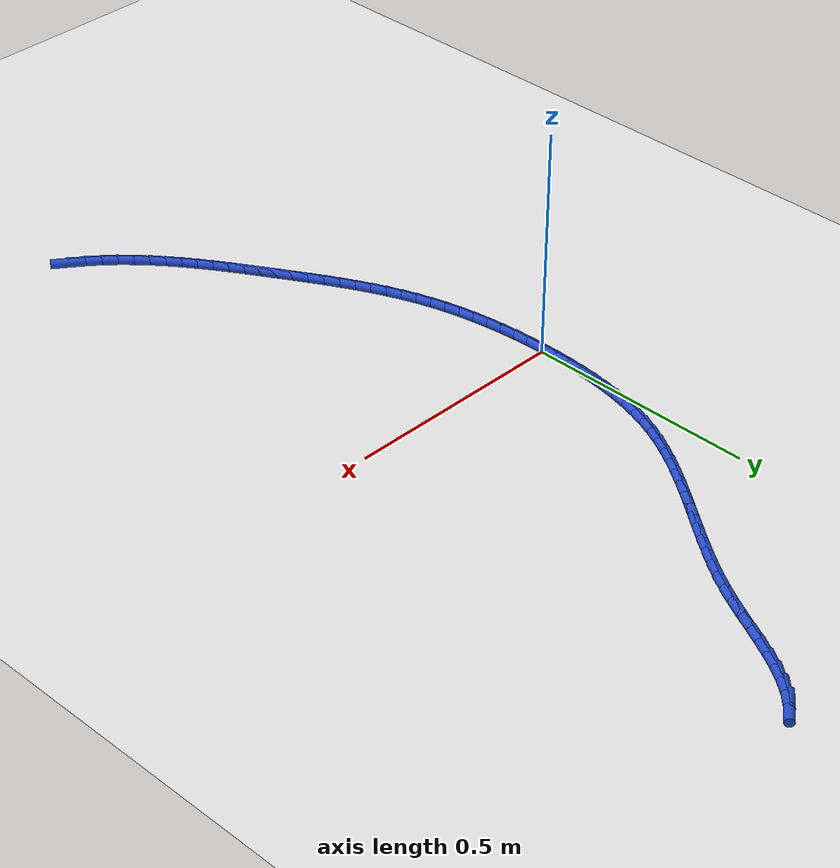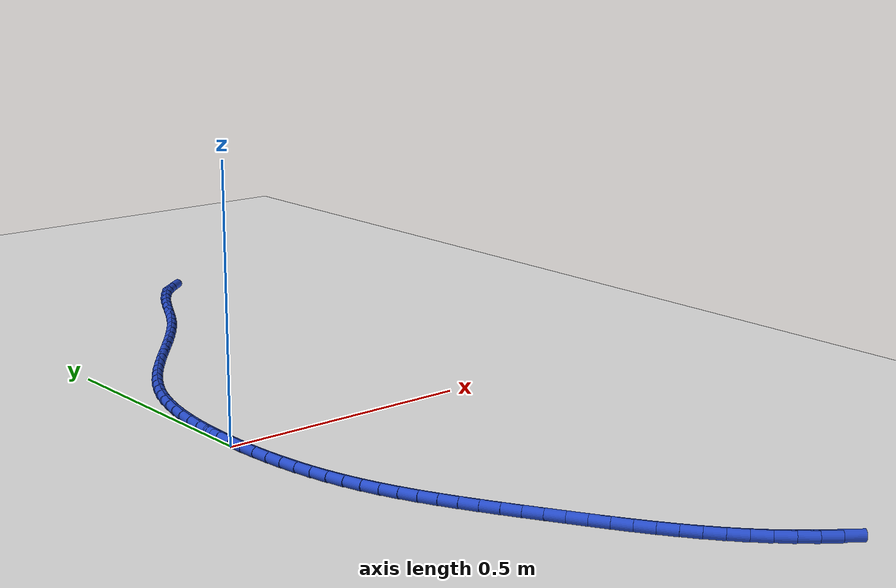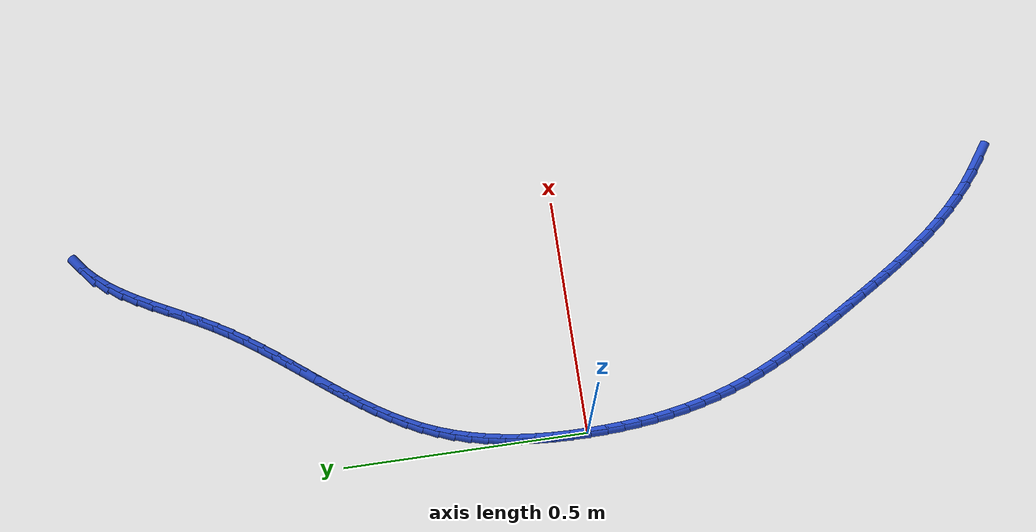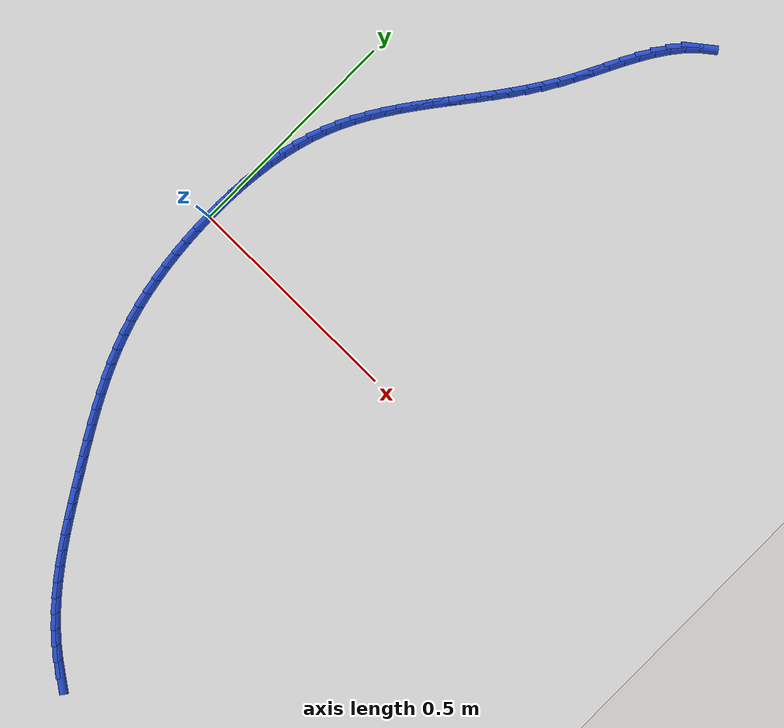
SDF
<sdf version="1.6">
 <world name="default">
  <model name="ground_plane">
   <static>1</static>
   <link name="link">
    <collision name="collision">
     <geometry><plane><normal>0 0 1</normal><size>100 100</size></plane></geometry>
     <surface><friction><ode><mu>100</mu><mu2>50</mu2></ode></friction></surface>
    </collision>
    <visual name="visual">
     <cast_shadows>0</cast_shadows>
     <geometry><plane><normal>0 0 1</normal><size>100 100</size></plane></geometry>
     <material>
      <script><uri>file://media/materials/scripts/gazebo.material</uri><name>Gazebo/WhiteGlow</name></script>
     </material>
    </visual>
   </link>
  </model>
  <model name="line">
   <link name="link_0">
    <pose>-1.734723475976807e-18 -5.551115123125783e-17 0.01 0 1.57 1.5666256355429615</pose>
    <collision name="collision">
     <geometry><cylinder><radius>0.01</radius><length>0.08</length></cylinder></geometry>
    </collision>
    <visual name="visual">
     <material>
      <script><name>Gazebo/Blue</name><uri>file://media/materials/scripts/gazebo.material</uri></script>
     </material>
     <geometry><cylinder><radius>0.01</radius><length>0.08</length></cylinder></geometry>
    </visual>
   </link>
   <link name="link_1">
    <pose>0.00014543730092362914 0.03487106785414455 0.01 0 1.57 1.5371304723873072</pose>
    <collision name="collision">
     <geometry><cylinder><radius>0.01</radius><length>0.08</length></cylinder></geometry>
    </collision>
    <visual name="visual">
     <material>
      <script><name>Gazebo/Blue</name><uri>file://media/materials/scripts/gazebo.material</uri></script>
     </material>
     <geometry><cylinder><radius>0.01</radius><length>0.08</length></cylinder></geometry>
    </visual>
   </link>
   <link name="link_2">
    <pose>0.0013197954793962151 0.06974065596037805 0.01 0 1.57 1.5045757995213618</pose>
    <collision name="collision">
     <geometry><cylinder><radius>0.01</radius><length>0.08</length></cylinder></geometry>
    </collision>
    <visual name="visual">
     <material>
      <script><name>Gazebo/Blue</name><uri>file://media/materials/scripts/gazebo.material</uri></script>
     </material>
     <geometry><cylinder><radius>0.01</radius><length>0.08</length></cylinder></geometry>
    </visual>
   </link>
   <link name="link_3">
    <pose>0.003624216525647472 0.10448896949501515 0.01 0 1.57 1.468692236618032</pose>
    <collision name="collision">
     <geometry><cylinder><radius>0.01</radius><length>0.08</length></cylinder></geometry>
    </collision>
    <visual name="visual">
     <material>
      <script><name>Gazebo/Blue</name><uri>file://media/materials/scripts/gazebo.material</uri></script>
     </material>
     <geometry><cylinder><radius>0.01</radius><length>0.08</length></cylinder></geometry>
    </visual>
   </link>
   <link name="link_4">
    <pose>0.007159842429907117 0.13899621363437048 0.01 0 1.57 1.4291886234938014</pose>
    <collision name="collision">
     <geometry><cylinder><radius>0.01</radius><length>0.08</length></cylinder></geometry>
    </collision>
    <visual name="visual">
     <material>
      <script><name>Gazebo/Blue</name><uri>file://media/materials/scripts/gazebo.material</uri></script>
     </material>
     <geometry><cylinder><radius>0.01</radius><length>0.08</length></cylinder></geometry>
    </visual>
   </link>
   <link name="link_5">
    <pose>0.012027815182404878 0.17314259355475886 0.01 0 1.57 1.3857600534692314</pose>
    <collision name="collision">
     <geometry><cylinder><radius>0.01</radius><length>0.08</length></cylinder></geometry>
    </collision>
    <visual name="visual">
     <material>
      <script><name>Gazebo/Blue</name><uri>file://media/materials/scripts/gazebo.material</uri></script>
     </material>
     <geometry><cylinder><radius>0.01</radius><length>0.08</length></cylinder></geometry>
    </visual>
   </link>
   <link name="link_6">
    <pose>0.01832927677337047 0.20680831443249503 0.01 0 1.57 1.338100644859804</pose>
    <collision name="collision">
     <geometry><cylinder><radius>0.01</radius><length>0.08</length></cylinder></geometry>
    </collision>
    <visual name="visual">
     <material>
      <script><name>Gazebo/Blue</name><uri>file://media/materials/scripts/gazebo.material</uri></script>
     </material>
     <geometry><cylinder><radius>0.01</radius><length>0.08</length></cylinder></geometry>
    </visual>
   </link>
   <link name="link_7">
    <pose>0.026165369193033618 0.23987358144389362 0.01 0 1.57 1.285922636598984</pose>
    <collision name="collision">
     <geometry><cylinder><radius>0.01</radius><length>0.08</length></cylinder></geometry>
    </collision>
    <visual name="visual">
     <material>
      <script><name>Gazebo/Blue</name><uri>file://media/materials/scripts/gazebo.material</uri></script>
     </material>
     <geometry><cylinder><radius>0.01</radius><length>0.08</length></cylinder></geometry>
    </visual>
   </link>
   <link name="link_8">
    <pose>0.03563723443162402 0.2722185997652692 0.01 0 1.57 1.228983282916114</pose>
    <collision name="collision">
     <geometry><cylinder><radius>0.01</radius><length>0.08</length></cylinder></geometry>
    </collision>
    <visual name="visual">
     <material>
      <script><name>Gazebo/Blue</name><uri>file://media/materials/scripts/gazebo.material</uri></script>
     </material>
     <geometry><cylinder><radius>0.01</radius><length>0.08</length></cylinder></geometry>
    </visual>
   </link>
   <link name="link_9">
    <pose>0.04684601447937141 0.30372357457293675 0.01 0 1.57 1.1681911186738887</pose>
    <collision name="collision">
     <geometry><cylinder><radius>0.01</radius><length>0.08</length></cylinder></geometry>
    </collision>
    <visual name="visual">
     <material>
      <script><name>Gazebo/Blue</name><uri>file://media/materials/scripts/gazebo.material</uri></script>
     </material>
     <geometry><cylinder><radius>0.01</radius><length>0.08</length></cylinder></geometry>
    </visual>
   </link>
   <link name="link_10">
    <pose>0.05986431212017489 0.3342924657974614 0.01 0 1.57 1.1109357862142923</pose>
    <collision name="collision">
     <geometry><cylinder><radius>0.01</radius><length>0.08</length></cylinder></geometry>
    </collision>
    <visual name="visual">
     <material>
      <script><name>Gazebo/Blue</name><uri>file://media/materials/scripts/gazebo.material</uri></script>
     </material>
     <geometry><cylinder><radius>0.01</radius><length>0.08</length></cylinder></geometry>
    </visual>
   </link>
   <link name="link_11">
    <pose>0.07457241726912145 0.363989305968658 0.01 0 1.57 1.0607280065086602</pose>
    <collision name="collision">
     <geometry><cylinder><radius>0.01</radius><length>0.08</length></cylinder></geometry>
    </collision>
    <visual name="visual">
     <material>
      <script><name>Gazebo/Blue</name><uri>file://media/materials/scripts/gazebo.material</uri></script>
     </material>
     <geometry><cylinder><radius>0.01</radius><length>0.08</length></cylinder></geometry>
    </visual>
   </link>
   <link name="link_12">
    <pose>0.09077120367790922 0.3929442300658264 0.01 0 1.57 1.0179131908263694</pose>
    <collision name="collision">
     <geometry><cylinder><radius>0.01</radius><length>0.08</length></cylinder></geometry>
    </collision>
    <visual name="visual">
     <material>
      <script><name>Gazebo/Blue</name><uri>file://media/materials/scripts/gazebo.material</uri></script>
     </material>
     <geometry><cylinder><radius>0.01</radius><length>0.08</length></cylinder></geometry>
    </visual>
   </link>
   <link name="link_13">
    <pose>0.10826129481855573 0.42128758138983874 0.01 0 1.57 0.9826130668759274</pose>
    <collision name="collision">
     <geometry><cylinder><radius>0.01</radius><length>0.08</length></cylinder></geometry>
    </collision>
    <visual name="visual">
     <material>
      <script><name>Gazebo/Blue</name><uri>file://media/materials/scripts/gazebo.material</uri></script>
     </material>
     <geometry><cylinder><radius>0.01</radius><length>0.08</length></cylinder></geometry>
    </visual>
   </link>
   <link name="link_14">
    <pose>0.1268433141630784 0.44914970324156606 0.01 0 1.57 0.9548033243427864</pose>
    <collision name="collision">
     <geometry><cylinder><radius>0.01</radius><length>0.08</length></cylinder></geometry>
    </collision>
    <visual name="visual">
     <material>
      <script><name>Gazebo/Blue</name><uri>file://media/materials/scripts/gazebo.material</uri></script>
     </material>
     <geometry><cylinder><radius>0.01</radius><length>0.08</length></cylinder></geometry>
    </visual>
   </link>
   <link name="link_15">
    <pose>0.14631788518349464 0.47666093892188033 0.01 0 1.57 0.9343742652092333</pose>
    <collision name="collision">
     <geometry><cylinder><radius>0.01</radius><length>0.08</length></cylinder></geometry>
    </collision>
    <visual name="visual">
     <material>
      <script><name>Gazebo/Blue</name><uri>file://media/materials/scripts/gazebo.material</uri></script>
     </material>
     <geometry><cylinder><radius>0.01</radius><length>0.08</length></cylinder></geometry>
    </visual>
   </link>
   <link name="link_16">
    <pose>0.16648563135182204 0.5039516317316529 0.01 0 1.57 0.9211783074349869</pose>
    <collision name="collision">
     <geometry><cylinder><radius>0.01</radius><length>0.08</length></cylinder></geometry>
    </collision>
    <visual name="visual">
     <material>
      <script><name>Gazebo/Blue</name><uri>file://media/materials/scripts/gazebo.material</uri></script>
     </material>
     <geometry><cylinder><radius>0.01</radius><length>0.08</length></cylinder></geometry>
    </visual>
   </link>
   <link name="link_17">
    <pose>0.18714717614007798 0.5311521249717553 0.01 0 1.57 0.9150630915720176</pose>
    <collision name="collision">
     <geometry><cylinder><radius>0.01</radius><length>0.08</length></cylinder></geometry>
    </collision>
    <visual name="visual">
     <material>
      <script><name>Gazebo/Blue</name><uri>file://media/materials/scripts/gazebo.material</uri></script>
     </material>
     <geometry><cylinder><radius>0.01</radius><length>0.08</length></cylinder></geometry>
    </visual>
   </link>
   <link name="link_18">
    <pose>0.2081031430202799 0.5583927619430595 0.01 0 1.57 0.9158911643837881</pose>
    <collision name="collision">
     <geometry><cylinder><radius>0.01</radius><length>0.08</length></cylinder></geometry>
    </collision>
    <visual name="visual">
     <material>
      <script><name>Gazebo/Blue</name><uri>file://media/materials/scripts/gazebo.material</uri></script>
     </material>
     <geometry><cylinder><radius>0.01</radius><length>0.08</length></cylinder></geometry>
    </visual>
   </link>
   <link name="link_19">
    <pose>0.22915415546444537 0.585803885946437 0.01 0 1.57 0.9235479217979324</pose>
    <collision name="collision">
     <geometry><cylinder><radius>0.01</radius><length>0.08</length></cylinder></geometry>
    </collision>
    <visual name="visual">
     <material>
      <script><name>Gazebo/Blue</name><uri>file://media/materials/scripts/gazebo.material</uri></script>
     </material>
     <geometry><cylinder><radius>0.01</radius><length>0.08</length></cylinder></geometry>
    </visual>
   </link>
   <link name="link_20">
    <pose>0.25010083694459173 0.6135158402827589 0.01 0 1.57 0.9379393586637039</pose>
    <collision name="collision">
     <geometry><cylinder><radius>0.01</radius><length>0.08</length></cylinder></geometry>
    </collision>
    <visual name="visual">
     <material>
      <script><name>Gazebo/Blue</name><uri>file://media/materials/scripts/gazebo.material</uri></script>
     </material>
     <geometry><cylinder><radius>0.01</radius><length>0.08</length></cylinder></geometry>
    </visual>
   </link>
   <link name="link_21">
    <pose>0.2707438109327365 0.6416589682528971 0.01 0 1.57 0.9589807428190138</pose>
    <collision name="collision">
     <geometry><cylinder><radius>0.01</radius><length>0.08</length></cylinder></geometry>
    </collision>
    <visual name="visual">
     <material>
      <script><name>Gazebo/Blue</name><uri>file://media/materials/scripts/gazebo.material</uri></script>
     </material>
     <geometry><cylinder><radius>0.01</radius><length>0.08</length></cylinder></geometry>
    </visual>
   </link>
   <link name="link_22">
    <pose>0.29088370090089716 0.6703636131577234 0.01 0 1.57 0.9865770002628316</pose>
    <collision name="collision">
     <geometry><cylinder><radius>0.01</radius><length>0.08</length></cylinder></geometry>
    </collision>
    <visual name="visual">
     <material>
      <script><name>Gazebo/Blue</name><uri>file://media/materials/scripts/gazebo.material</uri></script>
     </material>
     <geometry><cylinder><radius>0.01</radius><length>0.08</length></cylinder></geometry>
    </visual>
   </link>
   <link name="link_23">
    <pose>0.3103211303210912 0.6997601182981092 0.01 0 1.57 1.0205956553627828</pose>
    <collision name="collision">
     <geometry><cylinder><radius>0.01</radius><length>0.08</length></cylinder></geometry>
    </collision>
    <visual name="visual">
     <material>
      <script><name>Gazebo/Blue</name><uri>file://media/materials/scripts/gazebo.material</uri></script>
     </material>
     <geometry><cylinder><radius>0.01</radius><length>0.08</length></cylinder></geometry>
    </visual>
   </link>
   <link name="link_24">
    <pose>0.32885672266533594 0.7299788269749259 0.01 0 1.57 1.0592207726144396</pose>
    <collision name="collision">
     <geometry><cylinder><radius>0.01</radius><length>0.08</length></cylinder></geometry>
    </collision>
    <visual name="visual">
     <material>
      <script><name>Gazebo/Blue</name><uri>file://media/materials/scripts/gazebo.material</uri></script>
     </material>
     <geometry><cylinder><radius>0.01</radius><length>0.08</length></cylinder></geometry>
    </visual>
   </link>
   <link name="link_25">
    <pose>0.34633397001514077 0.7611087570547396 0.01 0 1.57 1.0881630410492003</pose>
    <collision name="collision">
     <geometry><cylinder><radius>0.01</radius><length>0.08</length></cylinder></geometry>
    </collision>
    <visual name="visual">
     <material>
      <script><name>Gazebo/Blue</name><uri>file://media/materials/scripts/gazebo.material</uri></script>
     </material>
     <geometry><cylinder><radius>0.01</radius><length>0.08</length></cylinder></geometry>
    </visual>
   </link>
   <link name="link_26">
    <pose>0.362976809170989 0.7928721768540998 0.01 0 1.57 1.1004621261495766</pose>
    <collision name="collision">
     <geometry><cylinder><radius>0.01</radius><length>0.08</length></cylinder></geometry>
    </collision>
    <visual name="visual">
     <material>
      <script><name>Gazebo/Blue</name><uri>file://media/materials/scripts/gazebo.material</uri></script>
     </material>
     <geometry><cylinder><radius>0.01</radius><length>0.08</length></cylinder></geometry>
    </visual>
   </link>
   <link name="link_27">
    <pose>0.37920821617921646 0.8247994804166038 0.01 0 1.57 1.0962101434103593</pose>
    <collision name="collision">
     <geometry><cylinder><radius>0.01</radius><length>0.08</length></cylinder></geometry>
    </collision>
    <visual name="visual">
     <material>
      <script><name>Gazebo/Blue</name><uri>file://media/materials/scripts/gazebo.material</uri></script>
     </material>
     <geometry><cylinder><radius>0.01</radius><length>0.08</length></cylinder></geometry>
    </visual>
   </link>
   <link name="link_28">
    <pose>0.3954529084223659 0.8564193831338951 0.01 0 1.57 1.0749494466546932</pose>
    <collision name="collision">
     <geometry><cylinder><radius>0.01</radius><length>0.08</length></cylinder></geometry>
    </collision>
    <visual name="visual">
     <material>
      <script><name>Gazebo/Blue</name><uri>file://media/materials/scripts/gazebo.material</uri></script>
     </material>
     <geometry><cylinder><radius>0.01</radius><length>0.08</length></cylinder></geometry>
    </visual>
   </link>
   <link name="link_29">
    <pose>0.4121356032829803 0.8872606003976179 0.01 0 1.57 1.035594658221743</pose>
    <collision name="collision">
     <geometry><cylinder><radius>0.01</radius><length>0.08</length></cylinder></geometry>
    </collision>
    <visual name="visual">
     <material>
      <script><name>Gazebo/Blue</name><uri>file://media/materials/scripts/gazebo.material</uri></script>
     </material>
     <geometry><cylinder><radius>0.01</radius><length>0.08</length></cylinder></geometry>
    </visual>
   </link>
   <link name="link_30">
    <pose>0.4296810181436028 0.9168518475994167 0.01 0 1.57 0.9765388685158939</pose>
    <collision name="collision">
     <geometry><cylinder><radius>0.01</radius><length>0.08</length></cylinder></geometry>
    </collision>
    <visual name="visual">
     <material>
      <script><name>Gazebo/Blue</name><uri>file://media/materials/scripts/gazebo.material</uri></script>
     </material>
     <geometry><cylinder><radius>0.01</radius><length>0.08</length></cylinder></geometry>
    </visual>
   </link>
   <link name="link_31">
    <pose>0.44851387038677626 0.9447218401309353 0.01 0 1.57 0.8959830940010954</pose>
    <collision name="collision">
     <geometry><cylinder><radius>0.01</radius><length>0.08</length></cylinder></geometry>
    </collision>
    <visual name="visual">
     <material>
      <script><name>Gazebo/Blue</name><uri>file://media/materials/scripts/gazebo.material</uri></script>
     </material>
     <geometry><cylinder><radius>0.01</radius><length>0.08</length></cylinder></geometry>
    </visual>
   </link>
   <link name="link_32">
    <pose>0.4690588773950435 0.9703992933838176 0.01 0 1.57 0.792658053751829</pose>
    <collision name="collision">
     <geometry><cylinder><radius>0.01</radius><length>0.08</length></cylinder></geometry>
    </collision>
    <visual name="visual">
     <material>
      <script><name>Gazebo/Blue</name><uri>file://media/materials/scripts/gazebo.material</uri></script>
     </material>
     <geometry><cylinder><radius>0.01</radius><length>0.08</length></cylinder></geometry>
    </visual>
   </link>
   <link name="link_33">
    <pose>0.4917407565509475 0.9934129227497077 0.01 0 1.57 0.6673192470247913</pose>
    <collision name="collision">
     <geometry><cylinder><radius>0.01</radius><length>0.08</length></cylinder></geometry>
    </collision>
    <visual name="visual">
     <material>
      <script><name>Gazebo/Blue</name><uri>file://media/materials/scripts/gazebo.material</uri></script>
     </material>
     <geometry><cylinder><radius>0.01</radius><length>0.08</length></cylinder></geometry>
    </visual>
   </link>
   <link name="link_169">
    <pose>0.46515433038394866 -0.920084895769981 0.01 0 1.57 -0.6295325381369453</pose>
    <collision name="collision">
     <geometry><cylinder><radius>0.01</radius><length>0.08</length></cylinder></geometry>
    </collision>
    <visual name="visual">
     <material>
      <script><name>Gazebo/Blue</name><uri>file://media/materials/scripts/gazebo.material</uri></script>
     </material>
     <geometry><cylinder><radius>0.01</radius><length>0.08</length></cylinder></geometry>
    </visual>
   </link>
   <link name="link_170">
    <pose>0.43711120656638036 -0.8996583122934922 0.01 0 1.57 -0.686389764535392</pose>
    <collision name="collision">
     <geometry><cylinder><radius>0.01</radius><length>0.08</length></cylinder></geometry>
    </collision>
    <visual name="visual">
     <material>
      <script><name>Gazebo/Blue</name><uri>file://media/materials/scripts/gazebo.material</uri></script>
     </material>
     <geometry><cylinder><radius>0.01</radius><length>0.08</length></cylinder></geometry>
    </visual>
   </link>
   <link name="link_171">
    <pose>0.41044625517422323 -0.8778121267729413 0.01 0 1.57 -0.7429880947018812</pose>
    <collision name="collision">
     <geometry><cylinder><radius>0.01</radius><length>0.08</length></cylinder></geometry>
    </collision>
    <visual name="visual">
     <material>
      <script><name>Gazebo/Blue</name><uri>file://media/materials/scripts/gazebo.material</uri></script>
     </material>
     <geometry><cylinder><radius>0.01</radius><length>0.08</length></cylinder></geometry>
    </visual>
   </link>
   <link name="link_172">
    <pose>0.38523483730211 -0.8546533240475056 0.01 0 1.57 -0.7954351028812557</pose>
    <collision name="collision">
     <geometry><cylinder><radius>0.01</radius><length>0.08</length></cylinder></geometry>
    </collision>
    <visual name="visual">
     <material>
      <script><name>Gazebo/Blue</name><uri>file://media/materials/scripts/gazebo.material</uri></script>
     </material>
     <geometry><cylinder><radius>0.01</radius><length>0.08</length></cylinder></geometry>
    </visual>
   </link>
   <link name="link_173">
    <pose>0.361367824321877 -0.830302333633074 0.01 0 1.57 -0.8428246532370791</pose>
    <collision name="collision">
     <geometry><cylinder><radius>0.01</radius><length>0.08</length></cylinder></geometry>
    </collision>
    <visual name="visual">
     <material>
      <script><name>Gazebo/Blue</name><uri>file://media/materials/scripts/gazebo.material</uri></script>
     </material>
     <geometry><cylinder><radius>0.01</radius><length>0.08</length></cylinder></geometry>
    </visual>
   </link>
   <link name="link_174">
    <pose>0.3387108926652287 -0.8048814211251811 0.01 0 1.57 -0.8849103132311547</pose>
    <collision name="collision">
     <geometry><cylinder><radius>0.01</radius><length>0.08</length></cylinder></geometry>
    </collision>
    <visual name="visual">
     <material>
      <script><name>Gazebo/Blue</name><uri>file://media/materials/scripts/gazebo.material</uri></script>
     </material>
     <geometry><cylinder><radius>0.01</radius><length>0.08</length></cylinder></geometry>
    </visual>
   </link>
   <link name="link_175">
    <pose>0.3171297187638699 -0.7785128521193613 0.01 0 1.57 -0.9215711597393331</pose>
    <collision name="collision">
     <geometry><cylinder><radius>0.01</radius><length>0.08</length></cylinder></geometry>
    </collision>
    <visual name="visual">
     <material>
      <script><name>Gazebo/Blue</name><uri>file://media/materials/scripts/gazebo.material</uri></script>
     </material>
     <geometry><cylinder><radius>0.01</radius><length>0.08</length></cylinder></geometry>
    </visual>
   </link>
   <link name="link_176">
    <pose>0.2964899790495055 -0.7513188922111492 0.01 0 1.57 -0.952778246859947</pose>
    <collision name="collision">
     <geometry><cylinder><radius>0.01</radius><length>0.08</length></cylinder></geometry>
    </collision>
    <visual name="visual">
     <material>
      <script><name>Gazebo/Blue</name><uri>file://media/materials/scripts/gazebo.material</uri></script>
     </material>
     <geometry><cylinder><radius>0.01</radius><length>0.08</length></cylinder></geometry>
    </visual>
   </link>
   <link name="link_177">
    <pose>0.27665734995384 -0.7234218069960793 0.01 0 1.57 -0.9785624645098355</pose>
    <collision name="collision">
     <geometry><cylinder><radius>0.01</radius><length>0.08</length></cylinder></geometry>
    </collision>
    <visual name="visual">
     <material>
      <script><name>Gazebo/Blue</name><uri>file://media/materials/scripts/gazebo.material</uri></script>
     </material>
     <geometry><cylinder><radius>0.01</radius><length>0.08</length></cylinder></geometry>
    </visual>
   </link>
   <link name="link_178">
    <pose>0.25749750790857806 -0.6949438620696862 0.01 0 1.57 -0.99898661609455</pose>
    <collision name="collision">
     <geometry><cylinder><radius>0.01</radius><length>0.08</length></cylinder></geometry>
    </collision>
    <visual name="visual">
     <material>
      <script><name>Gazebo/Blue</name><uri>file://media/materials/scripts/gazebo.material</uri></script>
     </material>
     <geometry><cylinder><radius>0.01</radius><length>0.08</length></cylinder></geometry>
    </visual>
   </link>
   <link name="link_179">
    <pose>0.23887612934542446 -0.6660073230275043 0.01 0 1.57 -1.0141228869125745</pose>
    <collision name="collision">
     <geometry><cylinder><radius>0.01</radius><length>0.08</length></cylinder></geometry>
    </collision>
    <visual name="visual">
     <material>
      <script><name>Gazebo/Blue</name><uri>file://media/materials/scripts/gazebo.material</uri></script>
     </material>
     <geometry><cylinder><radius>0.01</radius><length>0.08</length></cylinder></geometry>
    </visual>
   </link>
   <link name="link_180">
    <pose>0.22065889069608388 -0.6367344554650685 0.01 0 1.57 -1.0240357966865754</pose>
    <collision name="collision">
     <geometry><cylinder><radius>0.01</radius><length>0.08</length></cylinder></geometry>
    </collision>
    <visual name="visual">
     <material>
      <script><name>Gazebo/Blue</name><uri>file://media/materials/scripts/gazebo.material</uri></script>
     </material>
     <geometry><cylinder><radius>0.01</radius><length>0.08</length></cylinder></geometry>
    </visual>
   </link>
   <link name="link_181">
    <pose>0.202711468392261 -0.6072475249779128 0.01 0 1.57 -1.028834627709544</pose>
    <collision name="collision">
     <geometry><cylinder><radius>0.01</radius><length>0.08</length></cylinder></geometry>
    </collision>
    <visual name="visual">
     <material>
      <script><name>Gazebo/Blue</name><uri>file://media/materials/scripts/gazebo.material</uri></script>
     </material>
     <geometry><cylinder><radius>0.01</radius><length>0.08</length></cylinder></geometry>
    </visual>
   </link>
   <link name="link_182">
    <pose>0.18490142874290763 -0.5776676224175296 0.01 0 1.57 -1.0321773854845717</pose>
    <collision name="collision">
     <geometry><cylinder><radius>0.01</radius><length>0.08</length></cylinder></geometry>
    </collision>
    <visual name="visual">
     <material>
      <script><name>Gazebo/Blue</name><uri>file://media/materials/scripts/gazebo.material</uri></script>
     </material>
     <geometry><cylinder><radius>0.01</radius><length>0.08</length></cylinder></geometry>
    </visual>
   </link>
   <link name="link_183">
    <pose>0.1672030199456397 -0.5480495253797053 0.01 0 1.57 -1.0395933582934265</pose>
    <collision name="collision">
     <geometry><cylinder><radius>0.01</radius><length>0.08</length></cylinder></geometry>
    </collision>
    <visual name="visual">
     <material>
      <script><name>Gazebo/Blue</name><uri>file://media/materials/scripts/gazebo.material</uri></script>
     </material>
     <geometry><cylinder><radius>0.01</radius><length>0.08</length></cylinder></geometry>
    </visual>
   </link>
   <link name="link_184">
    <pose>0.14975209970937006 -0.5183475553005049 0.01 0 1.57 -1.051581206192043</pose>
    <collision name="collision">
     <geometry><cylinder><radius>0.01</radius><length>0.08</length></cylinder></geometry>
    </collision>
    <visual name="visual">
     <material>
      <script><name>Gazebo/Blue</name><uri>file://media/materials/scripts/gazebo.material</uri></script>
     </material>
     <geometry><cylinder><radius>0.01</radius><length>0.08</length></cylinder></geometry>
    </visual>
   </link>
   <link name="link_185">
    <pose>0.13269799869033239 -0.48850765885799025 0.01 0 1.57 -1.0681980767079626</pose>
    <collision name="collision">
     <geometry><cylinder><radius>0.01</radius><length>0.08</length></cylinder></geometry>
    </collision>
    <visual name="visual">
     <material>
      <script><name>Gazebo/Blue</name><uri>file://media/materials/scripts/gazebo.material</uri></script>
     </material>
     <geometry><cylinder><radius>0.01</radius><length>0.08</length></cylinder></geometry>
    </visual>
   </link>
   <link name="link_186">
    <pose>0.11619004754476035 -0.45847578273022377 0.01 0 1.57 -1.0895119153239492</pose>
    <collision name="collision">
     <geometry><cylinder><radius>0.01</radius><length>0.08</length></cylinder></geometry>
    </collision>
    <visual name="visual">
     <material>
      <script><name>Gazebo/Blue</name><uri>file://media/materials/scripts/gazebo.material</uri></script>
     </material>
     <geometry><cylinder><radius>0.01</radius><length>0.08</length></cylinder></geometry>
    </visual>
   </link>
   <link name="link_187">
    <pose>0.10037757692888763 -0.4281978735952678 0.01 0 1.57 -1.1155910525035786</pose>
    <collision name="collision">
     <geometry><cylinder><radius>0.01</radius><length>0.08</length></cylinder></geometry>
    </collision>
    <visual name="visual">
     <material>
      <script><name>Gazebo/Blue</name><uri>file://media/materials/scripts/gazebo.material</uri></script>
     </material>
     <geometry><cylinder><radius>0.01</radius><length>0.08</length></cylinder></geometry>
    </visual>
   </link>
   <link name="link_188">
    <pose>0.08540991749894784 -0.39761987813118466 0.01 0 1.57 -1.146490051621287</pose>
    <collision name="collision">
     <geometry><cylinder><radius>0.01</radius><length>0.08</length></cylinder></geometry>
    </collision>
    <visual name="visual">
     <material>
      <script><name>Gazebo/Blue</name><uri>file://media/materials/scripts/gazebo.material</uri></script>
     </material>
     <geometry><cylinder><radius>0.01</radius><length>0.08</length></cylinder></geometry>
    </visual>
   </link>
   <link name="link_189">
    <pose>0.07143639991117463 -0.3666877430160364 0.01 0 1.57 -1.182231584281509</pose>
    <collision name="collision">
     <geometry><cylinder><radius>0.01</radius><length>0.08</length></cylinder></geometry>
    </collision>
    <visual name="visual">
     <material>
      <script><name>Gazebo/Blue</name><uri>file://media/materials/scripts/gazebo.material</uri></script>
     </material>
     <geometry><cylinder><radius>0.01</radius><length>0.08</length></cylinder></geometry>
    </visual>
   </link>
   <link name="link_190">
    <pose>0.058606354821801696 -0.33534741492788556 0.01 0 1.57 -1.2227790501406508</pose>
    <collision name="collision">
     <geometry><cylinder><radius>0.01</radius><length>0.08</length></cylinder></geometry>
    </collision>
    <visual name="visual">
     <material>
      <script><name>Gazebo/Blue</name><uri>file://media/materials/scripts/gazebo.material</uri></script>
     </material>
     <geometry><cylinder><radius>0.01</radius><length>0.08</length></cylinder></geometry>
    </visual>
   </link>
   <link name="link_191">
    <pose>0.047068944129809075 -0.3035449208640718 0.01 0 1.57 -1.266288601565555</pose>
    <collision name="collision">
     <geometry><cylinder><radius>0.01</radius><length>0.08</length></cylinder></geometry>
    </collision>
    <visual name="visual">
     <material>
      <script><name>Gazebo/Blue</name><uri>file://media/materials/scripts/gazebo.material</uri></script>
     </material>
     <geometry><cylinder><radius>0.01</radius><length>0.08</length></cylinder></geometry>
    </visual>
   </link>
   <link name="link_192">
    <pose>0.036919781425390305 -0.2712517739055274 0.01 0 1.57 -1.308441952286887</pose>
    <collision name="collision">
     <geometry><cylinder><radius>0.01</radius><length>0.08</length></cylinder></geometry>
    </collision>
    <visual name="visual">
     <material>
      <script><name>Gazebo/Blue</name><uri>file://media/materials/scripts/gazebo.material</uri></script>
     </material>
     <geometry><cylinder><radius>0.01</radius><length>0.08</length></cylinder></geometry>
    </visual>
   </link>
   <link name="link_193">
    <pose>0.028124808599132477 -0.23850120381202022 0.01 0 1.57 -1.3485687816837713</pose>
    <collision name="collision">
     <geometry><cylinder><radius>0.01</radius><length>0.08</length></cylinder></geometry>
    </collision>
    <visual name="visual">
     <material>
      <script><name>Gazebo/Blue</name><uri>file://media/materials/scripts/gazebo.material</uri></script>
     </material>
     <geometry><cylinder><radius>0.01</radius><length>0.08</length></cylinder></geometry>
    </visual>
   </link>
   <link name="link_194">
    <pose>0.02063072427718057 -0.20533559909094917 0.01 0 1.57 -1.38665625528226</pose>
    <collision name="collision">
     <geometry><cylinder><radius>0.01</radius><length>0.08</length></cylinder></geometry>
    </collision>
    <visual name="visual">
     <material>
      <script><name>Gazebo/Blue</name><uri>file://media/materials/scripts/gazebo.material</uri></script>
     </material>
     <geometry><cylinder><radius>0.01</radius><length>0.08</length></cylinder></geometry>
    </visual>
   </link>
   <link name="link_195">
    <pose>0.014384227085679338 -0.17179734824971277 0.01 0 1.57 -1.4227168843358737</pose>
    <collision name="collision">
     <geometry><cylinder><radius>0.01</radius><length>0.08</length></cylinder></geometry>
    </collision>
    <visual name="visual">
     <material>
      <script><name>Gazebo/Blue</name><uri>file://media/materials/scripts/gazebo.material</uri></script>
     </material>
     <geometry><cylinder><radius>0.01</radius><length>0.08</length></cylinder></geometry>
    </visual>
   </link>
   <link name="link_196">
    <pose>0.009332015650773557 -0.1379288397957097 0.01 0 1.57 -1.4567835017318362</pose>
    <collision name="collision">
     <geometry><cylinder><radius>0.01</radius><length>0.08</length></cylinder></geometry>
    </collision>
    <visual name="visual">
     <material>
      <script><name>Gazebo/Blue</name><uri>file://media/materials/scripts/gazebo.material</uri></script>
     </material>
     <geometry><cylinder><radius>0.01</radius><length>0.08</length></cylinder></geometry>
    </visual>
   </link>
   <link name="link_197">
    <pose>0.005420788598607973 -0.10377246223633842 0.01 0 1.57 -1.4889045465196689</pose>
    <collision name="collision">
     <geometry><cylinder><radius>0.01</radius><length>0.08</length></cylinder></geometry>
    </collision>
    <visual name="visual">
     <material>
      <script><name>Gazebo/Blue</name><uri>file://media/materials/scripts/gazebo.material</uri></script>
     </material>
     <geometry><cylinder><radius>0.01</radius><length>0.08</length></cylinder></geometry>
    </visual>
   </link>
   <link name="link_198">
    <pose>0.002597244555327346 -0.06937060407899734 0.01 0 1.57 -1.5191398234528029</pose>
    <collision name="collision">
     <geometry><cylinder><radius>0.01</radius><length>0.08</length></cylinder></geometry>
    </collision>
    <visual name="visual">
     <material>
      <script><name>Gazebo/Blue</name><uri>file://media/materials/scripts/gazebo.material</uri></script>
     </material>
     <geometry><cylinder><radius>0.01</radius><length>0.08</length></cylinder></geometry>
    </visual>
   </link>
   <link name="link_199">
    <pose>0.0008080821470764399 -0.03476565383108514 0.01 0 1.57 -1.5475568194680416</pose>
    <collision name="collision">
     <geometry><cylinder><radius>0.01</radius><length>0.08</length></cylinder></geometry>
    </collision>
    <visual name="visual">
     <material>
      <script><name>Gazebo/Blue</name><uri>file://media/materials/scripts/gazebo.material</uri></script>
     </material>
     <geometry><cylinder><radius>0.01</radius><length>0.08</length></cylinder></geometry>
    </visual>
   </link>
   <link name="link_200">
    <pose>8.673617379884035e-18 -1.942890293094024e-16 0.01 0 1.57 1.5673650580992962</pose>
    <collision name="collision">
     <geometry><cylinder><radius>0.01</radius><length>0.08</length></cylinder></geometry>
    </collision>
    <visual name="visual">
     <material>
      <script><name>Gazebo/Blue</name><uri>file://media/materials/scripts/gazebo.material</uri></script>
     </material>
     <geometry><cylinder><radius>0.01</radius><length>0.08</length></cylinder></geometry>
    </visual>
   </link>
   <link name="link_201">
    <pose>0.00011969674024282524 0.03488396890685968 0.01 0 1.57 1.567365058099296</pose>
    <collision name="collision">
     <geometry><cylinder><radius>0.01</radius><length>0.08</length></cylinder></geometry>
    </collision>
    <visual name="visual">
     <material>
      <script><name>Gazebo/Blue</name><uri>file://media/materials/scripts/gazebo.material</uri></script>
     </material>
     <geometry><cylinder><radius>0.01</radius><length>0.08</length></cylinder></geometry>
    </visual>
   </link>
  </model>
 </world>
</sdf>
